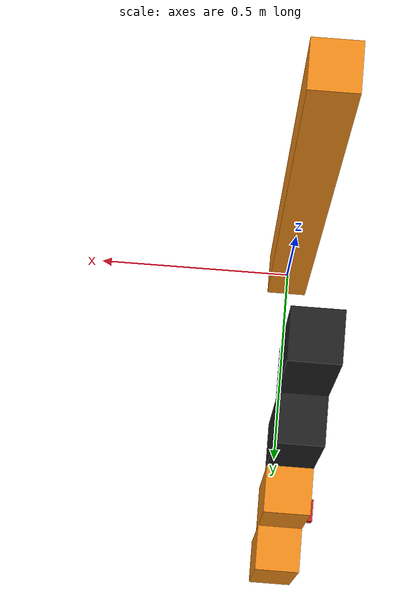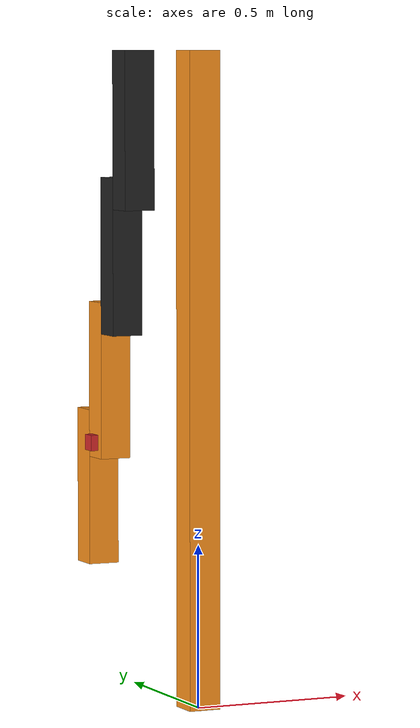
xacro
<?xml version="1.0"?>
<robot name="head_test" xmlns:xacro="http://ros.org/wiki/xacro">

<xacro:property name="pi" value="3.1415926535897931"/>

<!-- Constants for robot dimensions -->
  <xacro:property name="PI" value="3.1415926535897931"/>
  <xacro:property name="mass" value="1" /> <!-- arbitrary value for mass -->
  <xacro:property name="width" value="0.1" /> <!-- Square dimensions (widthxwidth) of beams -->
  <xacro:property name="height1" value="2" /> <!-- Link 1 -->
  <xacro:property name="height2" value="0.5" /> <!-- Link 2 -->
  <xacro:property name="height3" value="0.5" /> <!-- Link 3 -->
  <xacro:property name="height4" value="0.5" /> <!-- Link 3 -->
  <xacro:property name="camera_link" value="0.05" /> <!-- Size of square 'camera' box -->
  <xacro:property name="axel_offset" value="0.05" /> <!-- Space btw top of beam and the each joint -->

  <!-- Used for fixing robot to Gazebo 'base_link' -->
  <link name="world"/>

  <joint name="fixed" type="fixed">
    <parent link="world"/>
    <child link="link1"/>
  </joint>

  <!-- Base Link -->
  <link name="link1">
    <collision>
      <origin xyz="0 0 ${height1/2}" rpy="0 0 0"/>
      <geometry>
	<box size="${width} ${width} ${height1}"/>
      </geometry>
    </collision>

    <visual>
      <origin xyz="0 0 ${height1/2}" rpy="0 0 0"/>
      <geometry>
	<box size="${width} ${width} ${height1}"/>
      </geometry>
      <material name="orange"/>
    </visual>

    <inertial>
      <origin xyz="0 0 ${height1/2}" rpy="0 0 0"/>
      <mass value="${mass}"/>
      <inertia
	  ixx="${mass / 12.0 * (width*width + height1*height1)}" ixy="0.0" ixz="0.0"
	  iyy="${mass / 12.0 * (height1*height1 + width*width)}" iyz="0.0"
	  izz="${mass / 12.0 * (width*width + width*width)}"/>
    </inertial>
  </link>

<joint name="joint0" type="continuous">
    <parent link="link1"/>
    <child link="link0"/>
    <origin xyz="0 0.5 2" rpy="0 ${PI} 0"/>
    <axis xyz="0 0 1"/>
    <dynamics damping="0.7"/>
  </joint>

  <!-- Middle Link -->
  <link name="link0">
    <collision>
      <origin xyz="0 0 0.25" rpy="0 0 0"/>
      <geometry>
	<box size="${width} ${width} ${height2}"/>
      </geometry>
    </collision>

    <visual>
      <origin xyz="0 0 0.25" rpy="0 0 0"/>
      <geometry>
	<box size="${width} ${width} ${height2}"/>
      </geometry>
      <material name="black"/>
    </visual>

    <inertial>
      <origin xyz="0 0 0.25" rpy="0 0 0"/>
      <mass value="${mass}"/>
      <inertia
	  ixx="${mass / 12.0 * (width*width + height2*height2)}" ixy="0.0" ixz="0.0"
	  iyy="${mass / 12.0 * (height2*height2 + width*width)}" iyz="0.0"
	  izz="${mass / 12.0 * (width*width + width*width)}"/>
    </inertial>
  </link>

  <joint name="joint1" type="continuous">
    <parent link="link0"/>
    <child link="link2"/>
    <origin xyz="0 ${width} ${height2 - axel_offset}" rpy="0 0 0"/>
    <axis xyz="0 1 0"/>
    <dynamics damping="0.7"/>
  </joint>

  <!-- Middle Link -->
  <link name="link2">
    <collision>
      <origin xyz="0 0 ${height2/2 - axel_offset}" rpy="0 0 0"/>
      <geometry>
	<box size="${width} ${width} ${height2}"/>
      </geometry>
    </collision>

    <visual>
      <origin xyz="0 0 ${height2/2 - axel_offset}" rpy="0 0 0"/>
      <geometry>
	<box size="${width} ${width} ${height2}"/>
      </geometry>
      <material name="black"/>
    </visual>

    <inertial>
      <origin xyz="0 0 ${height2/2 - axel_offset}" rpy="0 0 0"/>
      <mass value="${mass}"/>
      <inertia
	  ixx="${mass / 12.0 * (width*width + height2*height2)}" ixy="0.0" ixz="0.0"
	  iyy="${mass / 12.0 * (height2*height2 + width*width)}" iyz="0.0"
	  izz="${mass / 12.0 * (width*width + width*width)}"/>
    </inertial>
  </link>

  <joint name="joint2" type="continuous">
    <parent link="link2"/>
    <child link="link3"/>
    <origin xyz="0 ${width} ${height2 - axel_offset*2}" rpy="0 0 0"/>
    <axis xyz="0 1 0"/>
    <dynamics damping="0.7"/>
  </joint>

  <!-- Top Link -->
  <link name="link3">
    <collision>
      <origin xyz="0 0 ${height3/2 - axel_offset}" rpy="0 0 0"/>
      <geometry>
	<box size="${width} ${width} ${height3}"/>
      </geometry>
    </collision>

    <visual>
      <origin xyz="0 0 ${height3/2 - axel_offset}" rpy="0 0 0"/>
      <geometry>
	<box size="${width} ${width} ${height3}"/>
      </geometry>
      <material name="orange"/>
    </visual>

    <inertial>
      <origin xyz="0 0 ${height3/2 - axel_offset}" rpy="0 0 0"/>
      <mass value="${mass}"/>
      <inertia
	  ixx="${mass / 12.0 * (width*width + height3*height3)}" ixy="0.0" ixz="0.0"
	  iyy="${mass / 12.0 * (height3*height3 + width*width)}" iyz="0.0"
	  izz="${mass / 12.0 * (width*width + width*width)}"/>
    </inertial>
  </link>

  <joint name="joint3" type="continuous">
    <parent link="link3"/>
    <child link="link4"/>
    <origin xyz="0 ${width} ${height3 - axel_offset*3}" rpy="0 0 0"/>
    <axis xyz="0 1 0"/>
    <dynamics damping="0.7"/>
  </joint>

  <!-- Top Link -->
  <link name="link4">
    <collision>
      <origin xyz="0 0 ${height4/2 - axel_offset}" rpy="0 0 0"/>
      <geometry>
	<box size="${width} ${width} ${height4}"/>
      </geometry>
    </collision>

    <visual>
      <origin xyz="0 0 ${height4/2 - axel_offset}" rpy="0 0 0"/>
      <geometry>
	<box size="${width} ${width} ${height4}"/>
      </geometry>
      <material name="orange"/>
    </visual>

    <inertial>
      <origin xyz="0 0 ${height4/2 - axel_offset}" rpy="0 0 0"/>
      <mass value="${mass}"/>
      <inertia
	  ixx="${mass / 12.0 * (width*width + height4*height4)}" ixy="0.0" ixz="0.0"
	  iyy="${mass / 12.0 * (height4*height4 + width*width)}" iyz="0.0"
	  izz="${mass / 12.0 * (width*width + width*width)}"/>
    </inertial>
  </link>

<joint name="eye_joint" type="fixed">
    <axis xyz="0 1 0" />
    <origin xyz="${camera_link} 0 ${height3 - axel_offset*2}" rpy="0 0 0"/>
    <parent link="link3"/>
    <child link="left_camera_frame"/>
</joint>

  <!-- Camera -->
  <link name="left_camera_frame">
    <collision>
      <origin xyz="0 0 0" rpy="0 0 0"/>
      <geometry>
	<box size="${camera_link} ${camera_link} ${camera_link}"/>
      </geometry>
    </collision>

    <visual>
      <origin xyz="0 0 0" rpy="0 0 0"/>
      <geometry>
	<box size="${camera_link} ${camera_link} ${camera_link}"/>
      </geometry>
      <material name="red"/>
    </visual>

    <inertial>
      <mass value="1e-5" />
      <origin xyz="0 0 0" rpy="0 0 0"/>
      <inertia ixx="1e-6" ixy="0" ixz="0" iyy="1e-6" iyz="0" izz="1e-6" />
    </inertial>
  </link>

  <!-- generate an optical frame http://www.ros.org/reps/rep-0103.html#suffix-frames
      so that ros and opencv can operate on the camera frame correctly -->
  <joint name="camera_optical_joint" type="fixed">
    <!-- these values have to be these values otherwise the gazebo camera image
        won't be aligned properly with the frame it is supposedly originating from -->
    <origin xyz="0 0 0" rpy="${-pi/2} 0 ${-pi/2}"/>
    <parent link="left_camera_frame"/>
    <child link="left_camera_optical_frame"/>
  </joint>

  <link name="left_camera_optical_frame">
  </link>

<gazebo reference="left_camera_frame">
    <sensor type="camera" name="camera1">
      <update_rate>30.0</update_rate>
      <camera name="head">
        <horizontal_fov>1.3962634</horizontal_fov>
        <image>
          <width>800</width>
          <height>800</height>
          <format>R8G8B8</format>
        </image>
        <clip>
          <near>0.02</near>
          <far>300</far>
        </clip>
        <noise>
          <type>gaussian</type>
          <!-- Noise is sampled independently per pixel on each frame.
               That pixel's noise value is added to each of its color
               channels, which at that point lie in the range [0,1]. -->
          <mean>0.0</mean>
          <stddev>0.007</stddev>
        </noise>
      </camera>
      <plugin name="camera_controller" filename="libgazebo_ros_camera.so">
        <alwaysOn>true</alwaysOn>
        <updateRate>0.0</updateRate>
        <cameraName>head_test/camera1</cameraName>
        <imageTopicName>image_raw</imageTopicName>
        <cameraInfoTopicName>camera_info</cameraInfoTopicName>
        <frameName>left_camera_optical_frame</frameName>
        <!-- setting hackBaseline to anything but 0.0 will cause a misalignment
            between the gazebo sensor image and the frame it is supposed to
            be attached to -->
        <hackBaseline>0.0</hackBaseline>
        <distortionK1>0.0</distortionK1>
        <distortionK2>0.0</distortionK2>
        <distortionK3>0.0</distortionK3>
        <distortionT1>0.0</distortionT1>
        <distortionT2>0.0</distortionT2>
        <CxPrime>0</CxPrime>
        <Cx>0.0</Cx>
        <Cy>0.0</Cy>
        <focalLength>0.0</focalLength>
      </plugin>
    </sensor>
  </gazebo>

</robot>
